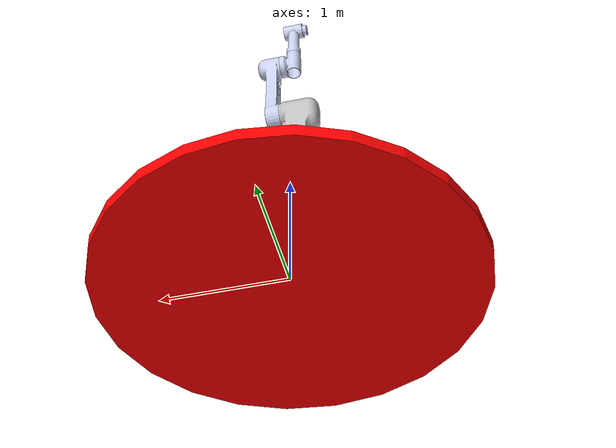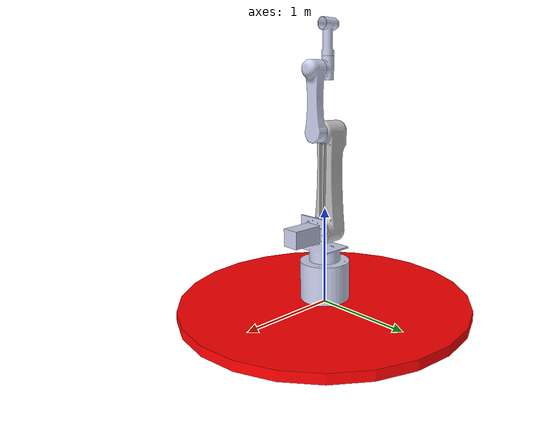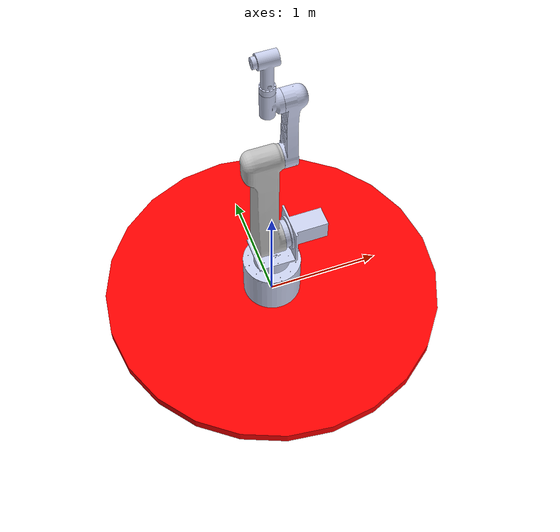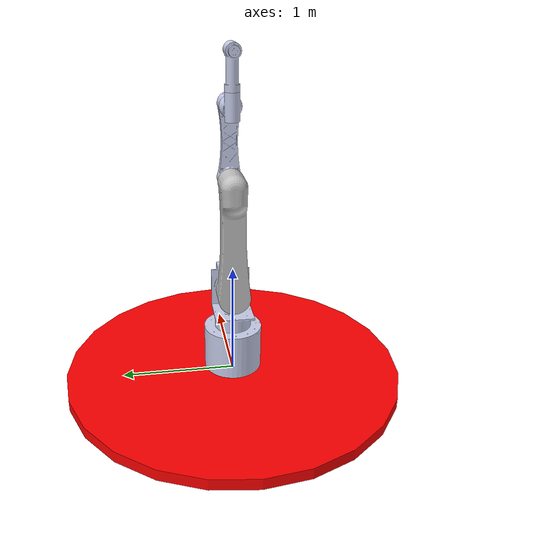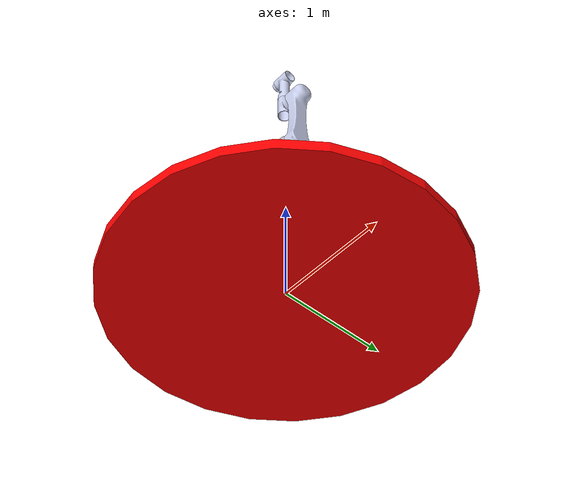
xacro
<?xml version="1.0"?>
<robot xmlns:xacro="http://www.ros.org/wiki/xacro" name="robot_nextup">

    <!-- SELECT ROBOT HERE -->
    <xacro:property name="robot_type" value="robot1"/>

    <xacro:arg name="initial_positions_file" default="initial_positions.yaml" />
    <xacro:if value="${robot_type == 'robot'}">
        <xacro:include filename="$(find nextup_moveit_config)/urdf/nextupRobot.urdf.xacro" />
    </xacro:if>

    <xacro:if value="${robot_type == 'robot1'}">
        <xacro:include filename="$(find nextup_moveit_config)/urdf/nextupRobot1.urdf.xacro" />
    </xacro:if>

    <xacro:if value="${robot_type == 'cobot'}">
        <xacro:include filename="$(find nextup_moveit_config)/urdf/nextupCobot.urdf.xacro" />
    </xacro:if>
    <xacro:include filename="robot_nextup.ros2_control.xacro" />

    <xacro:robot_nextup_ros2_control
        initial_positions_file="$(arg initial_positions_file)" />
</robot>

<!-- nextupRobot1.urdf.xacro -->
<robot
    name="robot_nextup" xmlns:xacro="http://www.ros.org/wiki/xacro">

    <link name="world" />
    <joint name="ground" type="fixed">
        <parent link="world" />
        <child link="ground_link" />
    </joint>
    <link name="ground_link">
        <visual>
            <origin xyz="0 0 0" rpy="0 0 0" />
            <geometry>
                <cylinder radius="1.5" length="0.1" />
            </geometry>
            <material name="">
                <color rgba="1 0 0 0.0" />
            </material>
        </visual>
    </link>

    <joint name="base" type="fixed">
        <parent link="world" />
        <child link="base_link" />
    </joint>

    <link
        name="base_link">
        <inertial>
            <origin
                xyz="0.000257708245772537 -3.58046925441613E-15 -0.327910157314388"
                rpy="0 0 0" />
            <mass
                value="36.1449829112928" />
            <inertia
                ixx="1.17640169572293"
                ixy="3.71761407508093E-16"
                ixz="1.44057592040527E-16"
                iyy="1.17640169572293"
                iyz="5.02120325449763E-18"
                izz="1.52975319622676" />
        </inertial>
        <visual>
            <origin
                xyz="0 0 0.6"
                rpy="0 0 0" />
            <geometry>
                <mesh
                    filename="package://nextup_moveit_config/meshes/robot1/base_link.STL" />
            </geometry>
            <material
                name="">
                <color
                    rgba="0.792156862745098 0.819607843137255 0.933333333333333 1" />
            </material>
        </visual>
        <collision>
            <origin
                xyz="0 0 0.6"
                rpy="0 0 0" />
            <geometry>
                <mesh
                    filename="package://nextup_moveit_config/meshes/robot1/base_link.STL" />
            </geometry>
        </collision>
    </link>
    <link
        name="link1">
        <inertial>
            <origin
                xyz="0.18631 1.6653E-15 0.14306"
                rpy="0 0 0" />
            <mass
                value="21.096" />
            <inertia
                ixx="0.17454"
                ixy="-1.0038E-16"
                ixz="1.238E-17"
                iyy="0.39489"
                iyz="-2.9388E-18"
                izz="0.4303" />
        </inertial>
        <visual>
            <origin
                xyz="0 0 0"
                rpy="0 0 0" />
            <geometry>
                <mesh
                    filename="package://nextup_moveit_config/meshes/robot1/Link1.STL" />
            </geometry>
            <material
                name="">
                <color
                    rgba="0.79216 0.81961 0.93333 1" />
            </material>
        </visual>
        <collision>
            <origin
                xyz="0 0 0"
                rpy="0 0 0" />
            <geometry>
                <mesh
                    filename="package://nextup_moveit_config/meshes/robot1/Link1.STL" />
            </geometry>
        </collision>
    </link>
    <joint
        name="joint1"
        type="revolute">
        <origin
            xyz="0 0 0.593"
            rpy="0 0 0" />
        <parent
            link="base_link" />
        <child
            link="link1" />
        <axis
            xyz="0 0 1" />
        <limit
            lower="-5.0"
            upper="5.0"
            effort="0"
            velocity="0" />
    </joint>
    <link
        name="link2">
        <inertial>
            <origin
                xyz="-0.20582 -0.49596 0.12565"
                rpy="0 0 0" />
            <mass
                value="58.338" />
            <inertia
                ixx="6.1176"
                ixy="-2.3541"
                ixz="0.036434"
                iyy="1.415"
                iyz="0.087079"
                izz="7.3006" />
        </inertial>
        <visual>
            <origin
                xyz="0 0 0"
                rpy="0 0 0" />
            <geometry>
                <mesh
                    filename="package://nextup_moveit_config/meshes/robot1/Link2.STL" />
            </geometry>
            <material
                name="">
                <color
                    rgba="0.75294 0.75294 0.75294 1" />
            </material>
        </visual>
        <collision>
            <origin
                xyz="0 0 0"
                rpy="0 0 0" />
            <geometry>
                <mesh
                    filename="package://nextup_moveit_config/meshes/robot1/Link2.STL" />
            </geometry>
        </collision>
    </link>
    <joint
        name="joint2"
        type="revolute">
        <origin
            xyz="0.0772577082457715 0 0.18"
            rpy="-1.5707963267949 0.40214795034629 1.5707963267949" />
        <parent
            link="link1" />
        <child
            link="link2" />
        <axis
            xyz="0 0 1" />
        <limit
            lower="-3.14"
            upper="3.14"
            effort="0"
            velocity="0" />
    </joint>
    <link
        name="link3">
        <inertial>
            <origin
                xyz="-2.1601E-05 0.29953 0.069037"
                rpy="0 0 0" />
            <mass
                value="4.4319" />
            <inertia
                ixx="0.24822"
                ixy="-1.3203E-05"
                ixz="-2.0451E-06"
                iyy="0.015772"
                iyz="-0.0049636"
                izz="0.25938" />
        </inertial>
        <visual>
            <origin
                xyz="0 0 0"
                rpy="0 0 0" />
            <geometry>
                <mesh
                    filename="package://nextup_moveit_config/meshes/robot1/Link3.STL" />
            </geometry>
            <material
                name="">
                <color
                    rgba="0.79216 0.81961 0.93333 1" />
            </material>
        </visual>
        <collision>
            <origin
                xyz="0 0 0"
                rpy="0 0 0" />
            <geometry>
                <mesh
                    filename="package://nextup_moveit_config/meshes/robot1/Link3.STL" />
            </geometry>
        </collision>
    </link>
    <joint
        name="joint3"
        type="revolute">
        <origin
      xyz="-0.383049008063237 -0.923728021347067 0.00200000000000033"
      rpy="3.14159265358979 0 -0.40214795034629" />
        <parent
            link="link2" />
        <child
            link="link3" />
        <axis
            xyz="0 0 -1" />
        <limit
            lower="-3.14"
            upper="3.14"
            effort="0"
            velocity="0" />
    </joint>
    <link
        name="link4">
        <inertial>
            <origin
                xyz="0.0112698893864455 8.78192538966704E-08 0.0705582769521659"
                rpy="0 0 0" />
            <mass
                value="0.860827565799041" />
            <inertia
                ixx="0.0040342997992347"
                ixy="-1.56866498488363E-08"
                ixz="-0.000343828125135001"
                iyy="0.00532849657373964"
                iyz="7.16982990627076E-09"
                izz="0.00532813794335908" />
        </inertial>
        <visual>
            <origin
                xyz="0 0 0"
                rpy="0 0 0" />
            <geometry>
                <mesh
                    filename="package://nextup_moveit_config/meshes/robot1/Link4.STL" />
            </geometry>
            <material
                name="">
                <color
                    rgba="0.792156862745098 0.819607843137255 0.933333333333333 1" />
            </material>
        </visual>
        <collision>
            <origin
                xyz="0 0 0"
                rpy="0 0 0" />
            <geometry>
                <mesh
                    filename="package://nextup_moveit_config/meshes/robot1/Link4.STL" />
            </geometry>
        </collision>
    </link>
    <joint
        name="joint4"
        type="revolute">
        <origin
      xyz="0 0.6 0"
      rpy="3.14159265358979 0 1.5707963267949" />
        <parent
            link="link3" />
        <child
            link="link4" />
        <axis
            xyz="0 0 -1" />
        <limit
            lower="-3.14"
            upper="3.14"
            effort="0"
            velocity="0" />
    </joint>
    <link
        name="link5">
        <inertial>
            <origin
                xyz="0.000226912175983945 0.00290930240181431 0.142623970995116"
                rpy="0 0 0" />
            <mass
                value="0.708528435824917" />
            <inertia
                ixx="0.00963118102233432"
                ixy="5.07576224800873E-07"
                ixz="1.78644137290967E-05"
                iyy="0.00947772887852644"
                iyz="-0.000212103519375082"
                izz="0.00218932868192981" />
        </inertial>
        <visual>
            <origin
                xyz="0 0 0"
                rpy="0 0 0" />
            <geometry>
                <mesh
                    filename="package://nextup_moveit_config/meshes/robot1/Link5.STL" />
            </geometry>
            <material
                name="">
                <color
                    rgba="0.792156862745098 0.819607843137255 0.929411764705882 1" />
            </material>
        </visual>
        <collision>
            <origin
                xyz="0 0 0"
                rpy="0 0 0" />
            <geometry>
                <mesh
                    filename="package://nextup_moveit_config/meshes/robot1/Link5.STL" />
            </geometry>
        </collision>
    </link>
    <joint
        name="joint5"
        type="revolute">
        <origin
      xyz="0.180000001578827 0 0.105999997318973"
      rpy="1.57079634168949 0 1.5707963267949" />
        <parent
            link="link4" />
        <child
            link="link5" />
        <axis
            xyz="0 0 -1" />
        <limit
            lower="-6.28"
            upper="6.28"
            effort="0"
            velocity="0" />
    </joint>
    <link
        name="link6">
        <inertial>
            <origin
                xyz="0 1.11022302462516E-16 0.00134371802530486"
                rpy="0 0 0" />
            <mass
                value="0.525244508833449" />
            <inertia
                ixx="0.000699147086338904"
                ixy="-5.42101086242752E-20"
                ixz="-1.16089113387967E-19"
                iyy="0.000699147086338904"
                iyz="-1.44822005245917E-18"
                izz="0.000463941476899319" />
        </inertial>
        <visual>
            <origin
                xyz="0 0 0"
                rpy="0 0 0" />
            <geometry>
                <mesh
                    filename="package://nextup_moveit_config/meshes/robot1/Link6.STL" />
            </geometry>
            <material
                name="">
                <color
                    rgba="0.792156862745098 0.819607843137255 0.933333333333333 1" />
            </material>
        </visual>
        <collision>
            <origin
                xyz="0 0 0"
                rpy="0 0 0" />
            <geometry>
                <mesh
                    filename="package://nextup_moveit_config/meshes/robot1/Link6.STL" />
            </geometry>
        </collision>
    </link>
    <joint
        name="joint6"
        type="revolute">
        <origin
      xyz="-0.000499999999999917 0.0665000000000008 0.244999999999999"
      rpy="1.5707963267949 1.21317427081458 3.14159265358979" />
        <parent
            link="link5" />
        <child
            link="link6" />
        <axis
            xyz="0 0 -1" />
        <limit
            lower="-6.28"
            upper="6.28"
            effort="0"
            velocity="0" />
    </joint>

    <joint name="end" type="fixed">
        <origin xyz="0 0 0.02" rpy="3.14 0 -1.57" />
        <parent
            link="link6" />
        <child
            link="end" />
    </joint>

    <link name="end" />
</robot>
